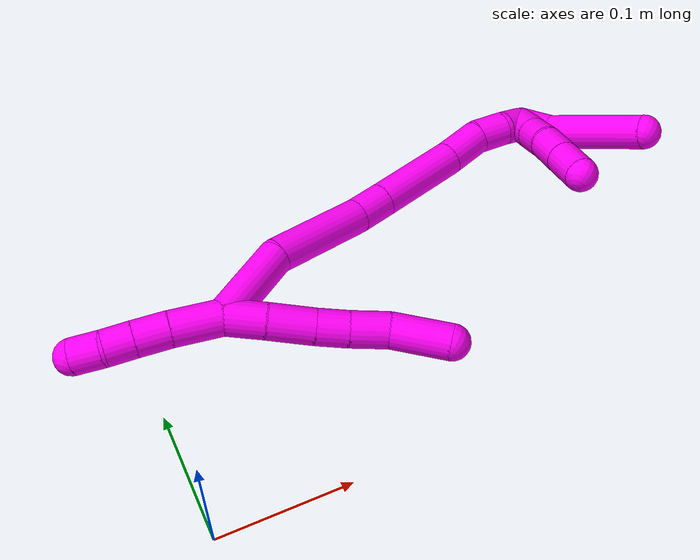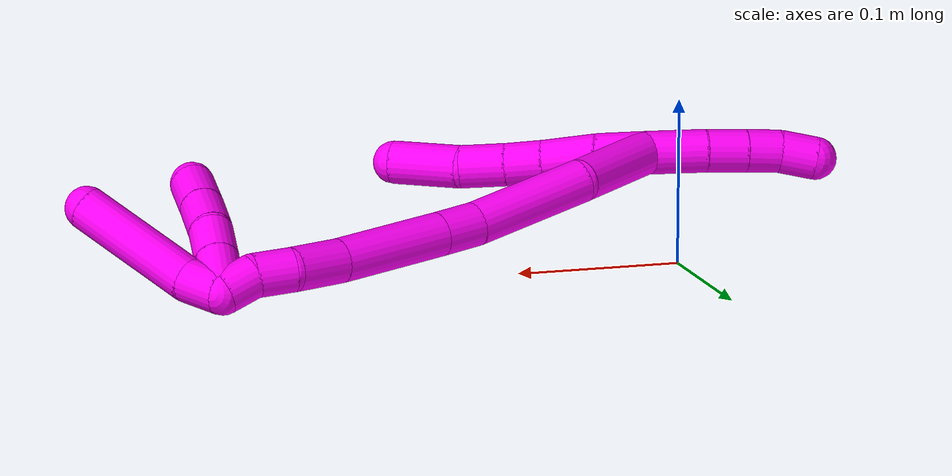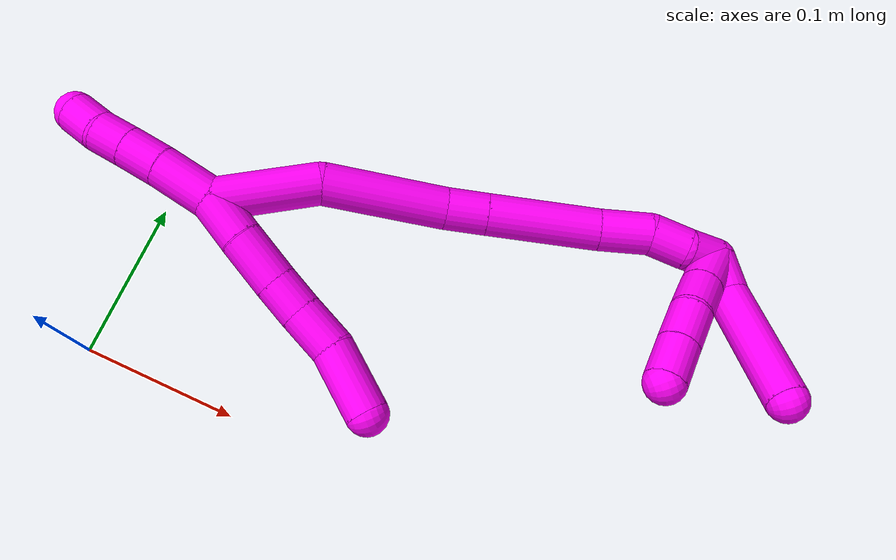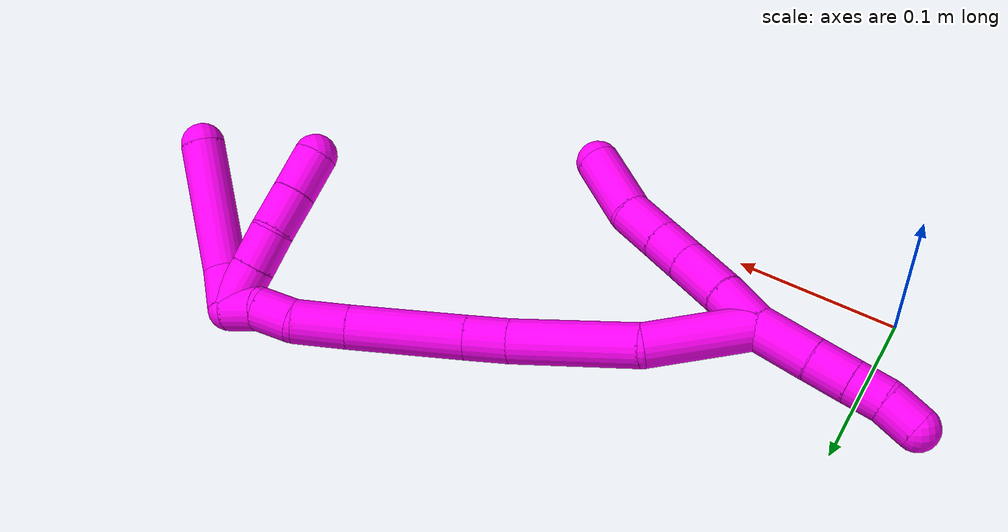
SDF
<sdf version="1.7">
 <world name="default">
  <model name="photoneo_s_sensor">
   <static>1</static>
   <pose>0 0 2 1.57079 1.57079 3.14159</pose>
   <link name="link">
    <inertial><mass>0.1</mass></inertial>
    <sensor name="sensor" type="depth">
     <update_rate>30</update_rate>
     <camera>
      <horizontal_fov>1.22</horizontal_fov>
      <image><width>1920</width><height>1200</height><format>B8G8R8</format></image>
      <clip><near>0.1</near><far>4</far></clip>
      <depth_camera><output>points</output></depth_camera>
     </camera>
     <plugin name="camera_plugin" filename="libgazebo_ros_depth_camera.so">
      <baseline>0.2</baseline>
      <alwaysOn>1</alwaysOn>
      <updateRate>0.0</updateRate>
      <cameraName>camera_ir</cameraName>
      <imageTopicName>/camera/color/image_raw</imageTopicName>
      <cameraInfoTopicName>/camera/color/camera_info</cameraInfoTopicName>
      <depthImageTopicName>/camera/depth/image_raw</depthImageTopicName>
      <depthImageCameraInfoTopicName>/camera/depth/camera_info</depthImageCameraInfoTopicName>
      <pointCloudTopicName>/camera/depth/points</pointCloudTopicName>
      <frameName>fr_optical</frameName>
      <pointCloudCutoff>0.1</pointCloudCutoff>
      <pointCloudCutoffMax>2.0</pointCloudCutoffMax>
      <distortionK1>0</distortionK1>
      <distortionK2>0</distortionK2>
      <distortionK3>0</distortionK3>
      <distortionT1>0</distortionT1>
      <distortionT2>0</distortionT2>
      <CxPrime>0</CxPrime>
      <Cx>0</Cx>
      <Cy>0</Cy>
      <focalLength>0</focalLength>
      <hackBaseline>0</hackBaseline>
     </plugin>
    </sensor>
   </link>
  </model>
  <model name="bin">
   <static>1</static>
   <link name="bottom">
    <collision name="collision-bottom">
     <pose>0 0 -0.01 0 -0 0</pose>
     <geometry><box><size>0.8 0.6 0.02</size></box></geometry>
     <surface>
      <friction><ode><mu>100</mu><mu2>100</mu2></ode></friction>
      <contact><collide_bitmask>65535</collide_bitmask></contact>
     </surface>
    </collision>
   </link>
   <link name="west_wall">
    <collision name="collision-west_wall">
     <pose>-0.41 0 0.1 0 -0 0</pose>
     <geometry><box><size>0.02 0.6 0.2</size></box></geometry>
     <surface>
      <friction><ode><mu>100</mu><mu2>100</mu2></ode></friction>
      <contact><collide_bitmask>65535</collide_bitmask></contact>
     </surface>
    </collision>
   </link>
   <link name="east_wall">
    <collision name="collision-east_wall">
     <pose>0.41 0 0.1 0 -0 0</pose>
     <geometry><box><size>0.02 0.6 0.2</size></box></geometry>
     <surface>
      <friction><ode><mu>100</mu><mu2>100</mu2></ode></friction>
      <contact><collide_bitmask>65535</collide_bitmask></contact>
     </surface>
    </collision>
   </link>
   <link name="south_wall">
    <collision name="collision-south_wall">
     <pose>0 -0.31 0.1 0 -0 0</pose>
     <geometry><box><size>0.8 0.02 0.2</size></box></geometry>
     <surface>
      <friction><ode><mu>100</mu><mu2>100</mu2></ode></friction>
      <contact><collide_bitmask>65535</collide_bitmask></contact>
     </surface>
    </collision>
   </link>
   <link name="north_wall">
    <collision name="collision-north_wall">
     <pose>0 0.31 0.1 0 -0 0</pose>
     <geometry><box><size>0.8 0.02 0.2</size></box></geometry>
     <surface>
      <friction><ode><mu>100</mu><mu2>100</mu2></ode></friction>
      <contact><collide_bitmask>65535</collide_bitmask></contact>
     </surface>
    </collision>
   </link>
  </model>
  <model name="10">
   <static>0</static>
   <link name="10">
    <collision name="collision-cylinder-e_1_2_8">
     <pose>0.013307 0.000683 0.004247 -0.159543 1.25811 -0.11621</pose>
     <geometry><cylinder><radius>0.0125</radius><length>0.02797</length></cylinder></geometry>
     <surface>
      <friction><ode><mu>1.16</mu><mu2>1.16</mu2><slip1>0</slip1><slip2>0</slip2></ode></friction>
      <contact><ode><kp>1e+06</kp><kd>1</kd><max_vel>0</max_vel><min_depth>0.001</min_depth></ode></contact>
     </surface>
    </collision>
    <visual name="visual-cylinder-e_1_2_8">
     <pose>0.013307 0.000683 0.004247 -0.159543 1.25811 -0.11621</pose>
     <geometry><cylinder><radius>0.0125</radius><length>0.02797</length></cylinder></geometry>
     <material><ambient>1 0 0.964706 1</ambient></material>
    </visual>
    <collision name="collision-cylinder-e_2_8_9">
     <pose>0.041607 0.00335 0.013474 -0.379006 1.22748 -0.268627</pose>
     <geometry><cylinder><radius>0.0125</radius><length>0.031843</length></cylinder></geometry>
     <surface>
      <friction><ode><mu>1.16</mu><mu2>1.16</mu2><slip1>0</slip1><slip2>0</slip2></ode></friction>
      <contact><ode><kp>1e+06</kp><kd>1</kd><max_vel>0</max_vel><min_depth>0.001</min_depth></ode></contact>
     </surface>
    </collision>
    <visual name="visual-cylinder-e_2_8_9">
     <pose>0.041607 0.00335 0.013474 -0.379006 1.22748 -0.268627</pose>
     <geometry><cylinder><radius>0.0125</radius><length>0.031843</length></cylinder></geometry>
     <material><ambient>1 0 0.964706 1</ambient></material>
    </visual>
    <collision name="collision-cylinder-e_3_9_10">
     <pose>0.066907 0.006313 0.022236 -0.253564 1.20843 -0.175539</pose>
     <geometry><cylinder><radius>0.0125</radius><length>0.022048</length></cylinder></geometry>
     <surface>
      <friction><ode><mu>1.16</mu><mu2>1.16</mu2><slip1>0</slip1><slip2>0</slip2></ode></friction>
      <contact><ode><kp>1e+06</kp><kd>1</kd><max_vel>0</max_vel><min_depth>0.001</min_depth></ode></contact>
     </surface>
    </collision>
    <visual name="visual-cylinder-e_3_9_10">
     <pose>0.066907 0.006313 0.022236 -0.253564 1.20843 -0.175539</pose>
     <geometry><cylinder><radius>0.0125</radius><length>0.022048</length></cylinder></geometry>
     <material><ambient>1 0 0.964706 1</ambient></material>
    </visual>
    <collision name="collision-cylinder-e_4_10_11">
     <pose>0.08962 0.007962 0.031075 -0.131399 1.18069 -0.088114</pose>
     <geometry><cylinder><radius>0.0125</radius><length>0.026824</length></cylinder></geometry>
     <surface>
      <friction><ode><mu>1.16</mu><mu2>1.16</mu2><slip1>0</slip1><slip2>0</slip2></ode></friction>
      <contact><ode><kp>1e+06</kp><kd>1</kd><max_vel>0</max_vel><min_depth>0.001</min_depth></ode></contact>
     </surface>
    </collision>
    <visual name="visual-cylinder-e_4_10_11">
     <pose>0.08962 0.007962 0.031075 -0.131399 1.18069 -0.088114</pose>
     <geometry><cylinder><radius>0.0125</radius><length>0.026824</length></cylinder></geometry>
     <material><ambient>1 0 0.964706 1</ambient></material>
    </visual>
    <collision name="collision-cylinder-e_5_11_6">
     <pose>0.122393 0.007561 0.039398 0.316338 1.40362 0.268065</pose>
     <geometry><cylinder><radius>0.0125</radius><length>0.041314</length></cylinder></geometry>
     <surface>
      <friction><ode><mu>1.16</mu><mu2>1.16</mu2><slip1>0</slip1><slip2>0</slip2></ode></friction>
      <contact><ode><kp>1e+06</kp><kd>1</kd><max_vel>0</max_vel><min_depth>0.001</min_depth></ode></contact>
     </surface>
    </collision>
    <visual name="visual-cylinder-e_5_11_6">
     <pose>0.122393 0.007561 0.039398 0.316338 1.40362 0.268065</pose>
     <geometry><cylinder><radius>0.0125</radius><length>0.041314</length></cylinder></geometry>
     <material><ambient>1 0 0.964706 1</ambient></material>
    </visual>
    <collision name="collision-cylinder-e_1_2_12">
     <pose>-0.013975 -0.000405 -0.010561 3.10324 -0.9233 -3.06452</pose>
     <geometry><cylinder><radius>0.0125</radius><length>0.035042</length></cylinder></geometry>
     <surface>
      <friction><ode><mu>1.16</mu><mu2>1.16</mu2><slip1>0</slip1><slip2>0</slip2></ode></friction>
      <contact><ode><kp>1e+06</kp><kd>1</kd><max_vel>0</max_vel><min_depth>0.001</min_depth></ode></contact>
     </surface>
    </collision>
    <visual name="visual-cylinder-e_1_2_12">
     <pose>-0.013975 -0.000405 -0.010561 3.10324 -0.9233 -3.06452</pose>
     <geometry><cylinder><radius>0.0125</radius><length>0.035042</length></cylinder></geometry>
     <material><ambient>1 0 0.964706 1</ambient></material>
    </visual>
    <collision name="collision-cylinder-e_2_12_13">
     <pose>-0.037019 -0.000655 -0.028599 -3.12084 -0.88117 3.09759</pose>
     <geometry><cylinder><radius>0.0125</radius><length>0.023512</length></cylinder></geometry>
     <surface>
      <friction><ode><mu>1.16</mu><mu2>1.16</mu2><slip1>0</slip1><slip2>0</slip2></ode></friction>
      <contact><ode><kp>1e+06</kp><kd>1</kd><max_vel>0</max_vel><min_depth>0.001</min_depth></ode></contact>
     </surface>
    </collision>
    <visual name="visual-cylinder-e_2_12_13">
     <pose>-0.037019 -0.000655 -0.028599 -3.12084 -0.88117 3.09759</pose>
     <geometry><cylinder><radius>0.0125</radius><length>0.023512</length></cylinder></geometry>
     <material><ambient>1 0 0.964706 1</ambient></material>
    </visual>
    <collision name="collision-cylinder-e_3_13_14">
     <pose>-0.05374 -0.000242 -0.042626 -3.10219 -0.862576 3.05601</pose>
     <geometry><cylinder><radius>0.0125</radius><length>0.020149</length></cylinder></geometry>
     <surface>
      <friction><ode><mu>1.16</mu><mu2>1.16</mu2><slip1>0</slip1><slip2>0</slip2></ode></friction>
      <contact><ode><kp>1e+06</kp><kd>1</kd><max_vel>0</max_vel><min_depth>0.001</min_depth></ode></contact>
     </surface>
    </collision>
    <visual name="visual-cylinder-e_3_13_14">
     <pose>-0.05374 -0.000242 -0.042626 -3.10219 -0.862576 3.05601</pose>
     <geometry><cylinder><radius>0.0125</radius><length>0.020149</length></cylinder></geometry>
     <material><ambient>1 0 0.964706 1</ambient></material>
    </visual>
    <collision name="collision-cylinder-e_4_14_5">
     <pose>-0.070146 0.002113 -0.054862 -2.78846 -0.965101 2.48504</pose>
     <geometry><cylinder><radius>0.0125</radius><length>0.021298</length></cylinder></geometry>
     <surface>
      <friction><ode><mu>1.16</mu><mu2>1.16</mu2><slip1>0</slip1><slip2>0</slip2></ode></friction>
      <contact><ode><kp>1e+06</kp><kd>1</kd><max_vel>0</max_vel><min_depth>0.001</min_depth></ode></contact>
     </surface>
    </collision>
    <visual name="visual-cylinder-e_4_14_5">
     <pose>-0.070146 0.002113 -0.054862 -2.78846 -0.965101 2.48504</pose>
     <geometry><cylinder><radius>0.0125</radius><length>0.021298</length></cylinder></geometry>
     <material><ambient>1 0 0.964706 1</ambient></material>
    </visual>
    <collision name="collision-cylinder-e_1_2_15">
     <pose>0.005039 0.006662 0.029801 -0.219929 0.16354 -0.018096</pose>
     <geometry><cylinder><radius>0.0125</radius><length>0.061898</length></cylinder></geometry>
     <surface>
      <friction><ode><mu>1.16</mu><mu2>1.16</mu2><slip1>0</slip1><slip2>0</slip2></ode></friction>
      <contact><ode><kp>1e+06</kp><kd>1</kd><max_vel>0</max_vel><min_depth>0.001</min_depth></ode></contact>
     </surface>
    </collision>
    <visual name="visual-cylinder-e_1_2_15">
     <pose>0.005039 0.006662 0.029801 -0.219929 0.16354 -0.018096</pose>
     <geometry><cylinder><radius>0.0125</radius><length>0.061898</length></cylinder></geometry>
     <material><ambient>1 0 0.964706 1</ambient></material>
    </visual>
    <collision name="collision-cylinder-e_2_15_16">
     <pose>0.027245 0.024336 0.090161 -0.345886 0.48619 -0.086591</pose>
     <geometry><cylinder><radius>0.0125</radius><length>0.073482</length></cylinder></geometry>
     <surface>
      <friction><ode><mu>1.16</mu><mu2>1.16</mu2><slip1>0</slip1><slip2>0</slip2></ode></friction>
      <contact><ode><kp>1e+06</kp><kd>1</kd><max_vel>0</max_vel><min_depth>0.001</min_depth></ode></contact>
     </surface>
    </collision>
    <visual name="visual-cylinder-e_2_15_16">
     <pose>0.027245 0.024336 0.090161 -0.345886 0.48619 -0.086591</pose>
     <geometry><cylinder><radius>0.0125</radius><length>0.073482</length></cylinder></geometry>
     <material><ambient>1 0 0.964706 1</ambient></material>
    </visual>
    <collision name="collision-cylinder-e_3_16_17">
     <pose>0.04992 0.037749 0.131459 -0.219845 0.46402 -0.05214</pose>
     <geometry><cylinder><radius>0.0125</radius><length>0.024607</length></cylinder></geometry>
     <surface>
      <friction><ode><mu>1.16</mu><mu2>1.16</mu2><slip1>0</slip1><slip2>0</slip2></ode></friction>
      <contact><ode><kp>1e+06</kp><kd>1</kd><max_vel>0</max_vel><min_depth>0.001</min_depth></ode></contact>
     </surface>
    </collision>
    <visual name="visual-cylinder-e_3_16_17">
     <pose>0.04992 0.037749 0.131459 -0.219845 0.46402 -0.05214</pose>
     <geometry><cylinder><radius>0.0125</radius><length>0.024607</length></cylinder></geometry>
     <material><ambient>1 0 0.964706 1</ambient></material>
    </visual>
    <collision name="collision-cylinder-e_4_17_18">
     <pose>0.070264 0.046168 0.17134 -0.20368 0.462539 -0.04812</pose>
     <geometry><cylinder><radius>0.0125</radius><length>0.066506</length></cylinder></geometry>
     <surface>
      <friction><ode><mu>1.16</mu><mu2>1.16</mu2><slip1>0</slip1><slip2>0</slip2></ode></friction>
      <contact><ode><kp>1e+06</kp><kd>1</kd><max_vel>0</max_vel><min_depth>0.001</min_depth></ode></contact>
     </surface>
    </collision>
    <visual name="visual-cylinder-e_4_17_18">
     <pose>0.070264 0.046168 0.17134 -0.20368 0.462539 -0.04812</pose>
     <geometry><cylinder><radius>0.0125</radius><length>0.066506</length></cylinder></geometry>
     <material><ambient>1 0 0.964706 1</ambient></material>
    </visual>
    <collision name="collision-cylinder-e_5_18_19">
     <pose>0.091526 0.053935 0.214507 -0.124003 0.426626 -0.026893</pose>
     <geometry><cylinder><radius>0.0125</radius><length>0.031047</length></cylinder></geometry>
     <surface>
      <friction><ode><mu>1.16</mu><mu2>1.16</mu2><slip1>0</slip1><slip2>0</slip2></ode></friction>
      <contact><ode><kp>1e+06</kp><kd>1</kd><max_vel>0</max_vel><min_depth>0.001</min_depth></ode></contact>
     </surface>
    </collision>
    <visual name="visual-cylinder-e_5_18_19">
     <pose>0.091526 0.053935 0.214507 -0.124003 0.426626 -0.026893</pose>
     <geometry><cylinder><radius>0.0125</radius><length>0.031047</length></cylinder></geometry>
     <material><ambient>1 0 0.964706 1</ambient></material>
    </visual>
    <collision name="collision-cylinder-e_6_19_20">
     <pose>0.105514 0.05707 0.236696 -0.168218 0.740105 -0.065387</pose>
     <geometry><cylinder><radius>0.0125</radius><length>0.022433</length></cylinder></geometry>
     <surface>
      <friction><ode><mu>1.16</mu><mu2>1.16</mu2><slip1>0</slip1><slip2>0</slip2></ode></friction>
      <contact><ode><kp>1e+06</kp><kd>1</kd><max_vel>0</max_vel><min_depth>0.001</min_depth></ode></contact>
     </surface>
    </collision>
    <visual name="visual-cylinder-e_6_19_20">
     <pose>0.105514 0.05707 0.236696 -0.168218 0.740105 -0.065387</pose>
     <geometry><cylinder><radius>0.0125</radius><length>0.022433</length></cylinder></geometry>
     <material><ambient>1 0 0.964706 1</ambient></material>
    </visual>
    <collision name="collision-cylinder-e_7_20_1">
     <pose>0.118344 0.062749 0.252217 -0.528287 0.553791 -0.153427</pose>
     <geometry><cylinder><radius>0.0125</radius><length>0.020026</length></cylinder></geometry>
     <surface>
      <friction><ode><mu>1.16</mu><mu2>1.16</mu2><slip1>0</slip1><slip2>0</slip2></ode></friction>
      <contact><ode><kp>1e+06</kp><kd>1</kd><max_vel>0</max_vel><min_depth>0.001</min_depth></ode></contact>
     </surface>
    </collision>
    <visual name="visual-cylinder-e_7_20_1">
     <pose>0.118344 0.062749 0.252217 -0.528287 0.553791 -0.153427</pose>
     <geometry><cylinder><radius>0.0125</radius><length>0.020026</length></cylinder></geometry>
     <material><ambient>1 0 0.964706 1</ambient></material>
    </visual>
    <collision name="collision-cylinder-e_1_1_21">
     <pose>0.135416 0.064054 0.25864 1.87328 1.31165 1.61589</pose>
     <geometry><cylinder><radius>0.0125</radius><length>0.024428</length></cylinder></geometry>
     <surface>
      <friction><ode><mu>1.16</mu><mu2>1.16</mu2><slip1>0</slip1><slip2>0</slip2></ode></friction>
      <contact><ode><kp>1e+06</kp><kd>1</kd><max_vel>0</max_vel><min_depth>0.001</min_depth></ode></contact>
     </surface>
    </collision>
    <visual name="visual-cylinder-e_1_1_21">
     <pose>0.135416 0.064054 0.25864 1.87328 1.31165 1.61589</pose>
     <geometry><cylinder><radius>0.0125</radius><length>0.024428</length></cylinder></geometry>
     <material><ambient>1 0 0.964706 1</ambient></material>
    </visual>
    <collision name="collision-cylinder-e_2_21_4">
     <pose>0.179964 0.042211 0.258183 1.54559 1.04817 1.02646</pose>
     <geometry><cylinder><radius>0.0125</radius><length>0.075572</length></cylinder></geometry>
     <surface>
      <friction><ode><mu>1.16</mu><mu2>1.16</mu2><slip1>0</slip1><slip2>0</slip2></ode></friction>
      <contact><ode><kp>1e+06</kp><kd>1</kd><max_vel>0</max_vel><min_depth>0.001</min_depth></ode></contact>
     </surface>
    </collision>
    <visual name="visual-cylinder-e_2_21_4">
     <pose>0.179964 0.042211 0.258183 1.54559 1.04817 1.02646</pose>
     <geometry><cylinder><radius>0.0125</radius><length>0.075572</length></cylinder></geometry>
     <material><ambient>1 0 0.964706 1</ambient></material>
    </visual>
    <collision name="collision-cylinder-e_1_1_22">
     <pose>0.130493 0.05865 0.251716 2.32326 0.539529 1.13527</pose>
     <geometry><cylinder><radius>0.0125</radius><length>0.026797</length></cylinder></geometry>
     <surface>
      <friction><ode><mu>1.16</mu><mu2>1.16</mu2><slip1>0</slip1><slip2>0</slip2></ode></friction>
      <contact><ode><kp>1e+06</kp><kd>1</kd><max_vel>0</max_vel><min_depth>0.001</min_depth></ode></contact>
     </surface>
    </collision>
    <visual name="visual-cylinder-e_1_1_22">
     <pose>0.130493 0.05865 0.251716 2.32326 0.539529 1.13527</pose>
     <geometry><cylinder><radius>0.0125</radius><length>0.026797</length></cylinder></geometry>
     <material><ambient>1 0 0.964706 1</ambient></material>
    </visual>
    <collision name="collision-cylinder-e_2_22_23">
     <pose>0.143478 0.043062 0.237303 2.30972 0.5598 1.15383</pose>
     <geometry><cylinder><radius>0.0125</radius><length>0.02298</length></cylinder></geometry>
     <surface>
      <friction><ode><mu>1.16</mu><mu2>1.16</mu2><slip1>0</slip1><slip2>0</slip2></ode></friction>
      <contact><ode><kp>1e+06</kp><kd>1</kd><max_vel>0</max_vel><min_depth>0.001</min_depth></ode></contact>
     </surface>
    </collision>
    <visual name="visual-cylinder-e_2_22_23">
     <pose>0.143478 0.043062 0.237303 2.30972 0.5598 1.15383</pose>
     <geometry><cylinder><radius>0.0125</radius><length>0.02298</length></cylinder></geometry>
     <material><ambient>1 0 0.964706 1</ambient></material>
    </visual>
    <collision name="collision-cylinder-e_3_23_24">
     <pose>0.157292 0.029907 0.223127 2.47792 0.67319 1.58615</pose>
     <geometry><cylinder><radius>0.0125</radius><length>0.02474</length></cylinder></geometry>
     <surface>
      <friction><ode><mu>1.16</mu><mu2>1.16</mu2><slip1>0</slip1><slip2>0</slip2></ode></friction>
      <contact><ode><kp>1e+06</kp><kd>1</kd><max_vel>0</max_vel><min_depth>0.001</min_depth></ode></contact>
     </surface>
    </collision>
    <visual name="visual-cylinder-e_3_23_24">
     <pose>0.157292 0.029907 0.223127 2.47792 0.67319 1.58615</pose>
     <geometry><cylinder><radius>0.0125</radius><length>0.02474</length></cylinder></geometry>
     <material><ambient>1 0 0.964706 1</ambient></material>
    </visual>
    <collision name="collision-cylinder-e_4_24_3">
     <pose>0.173177 0.018067 0.207702 2.49582 0.696413 1.65218</pose>
     <geometry><cylinder><radius>0.0125</radius><length>0.025483</length></cylinder></geometry>
     <surface>
      <friction><ode><mu>1.16</mu><mu2>1.16</mu2><slip1>0</slip1><slip2>0</slip2></ode></friction>
      <contact><ode><kp>1e+06</kp><kd>1</kd><max_vel>0</max_vel><min_depth>0.001</min_depth></ode></contact>
     </surface>
    </collision>
    <visual name="visual-cylinder-e_4_24_3">
     <pose>0.173177 0.018067 0.207702 2.49582 0.696413 1.65218</pose>
     <geometry><cylinder><radius>0.0125</radius><length>0.025483</length></cylinder></geometry>
     <material><ambient>1 0 0.964706 1</ambient></material>
    </visual>
    <collision name="collision-sphere-3">
     <pose>0.181351 0.012185 0.199896 0 -0 0</pose>
     <geometry><sphere><radius>0.0125</radius></sphere></geometry>
     <surface>
      <friction><ode><mu>1.16</mu><mu2>1.16</mu2><slip1>0</slip1><slip2>0</slip2></ode></friction>
      <contact><ode><kp>1e+06</kp><kd>1</kd><max_vel>0</max_vel><min_depth>0.001</min_depth></ode></contact>
     </surface>
    </collision>
    <visual name="visual-sphere-3">
     <pose>0.181351 0.012185 0.199896 0 -0 0</pose>
     <geometry><sphere><radius>0.0125</radius></sphere></geometry>
     <material><ambient>1 0 0.964706 1</ambient></material>
    </visual>
    <collision name="collision-sphere-24">
     <pose>0.165004 0.02395 0.215509 0 -0 0</pose>
     <geometry><sphere><radius>0.0125</radius></sphere></geometry>
     <surface>
      <friction><ode><mu>1.16</mu><mu2>1.16</mu2><slip1>0</slip1><slip2>0</slip2></ode></friction>
      <contact><ode><kp>1e+06</kp><kd>1</kd><max_vel>0</max_vel><min_depth>0.001</min_depth></ode></contact>
     </surface>
    </collision>
    <visual name="visual-sphere-24">
     <pose>0.165004 0.02395 0.215509 0 -0 0</pose>
     <geometry><sphere><radius>0.0125</radius></sphere></geometry>
     <material><ambient>1 0 0.964706 1</ambient></material>
    </visual>
    <collision name="collision-sphere-23">
     <pose>0.149579 0.035865 0.230745 0 -0 0</pose>
     <geometry><sphere><radius>0.0125</radius></sphere></geometry>
     <surface>
      <friction><ode><mu>1.16</mu><mu2>1.16</mu2><slip1>0</slip1><slip2>0</slip2></ode></friction>
      <contact><ode><kp>1e+06</kp><kd>1</kd><max_vel>0</max_vel><min_depth>0.001</min_depth></ode></contact>
     </surface>
    </collision>
    <visual name="visual-sphere-23">
     <pose>0.149579 0.035865 0.230745 0 -0 0</pose>
     <geometry><sphere><radius>0.0125</radius></sphere></geometry>
     <material><ambient>1 0 0.964706 1</ambient></material>
    </visual>
    <collision name="collision-sphere-22">
     <pose>0.137376 0.050259 0.24386 0 -0 0</pose>
     <geometry><sphere><radius>0.0125</radius></sphere></geometry>
     <surface>
      <friction><ode><mu>1.16</mu><mu2>1.16</mu2><slip1>0</slip1><slip2>0</slip2></ode></friction>
      <contact><ode><kp>1e+06</kp><kd>1</kd><max_vel>0</max_vel><min_depth>0.001</min_depth></ode></contact>
     </surface>
    </collision>
    <visual name="visual-sphere-22">
     <pose>0.137376 0.050259 0.24386 0 -0 0</pose>
     <geometry><sphere><radius>0.0125</radius></sphere></geometry>
     <material><ambient>1 0 0.964706 1</ambient></material>
    </visual>
    <collision name="collision-sphere-4">
     <pose>0.212706 0.023356 0.258659 0 -0 0</pose>
     <geometry><sphere><radius>0.0125</radius></sphere></geometry>
     <surface>
      <friction><ode><mu>1.16</mu><mu2>1.16</mu2><slip1>0</slip1><slip2>0</slip2></ode></friction>
      <contact><ode><kp>1e+06</kp><kd>1</kd><max_vel>0</max_vel><min_depth>0.001</min_depth></ode></contact>
     </surface>
    </collision>
    <visual name="visual-sphere-4">
     <pose>0.212706 0.023356 0.258659 0 -0 0</pose>
     <geometry><sphere><radius>0.0125</radius></sphere></geometry>
     <material><ambient>1 0 0.964706 1</ambient></material>
    </visual>
    <collision name="collision-sphere-21">
     <pose>0.147222 0.061066 0.257708 0 -0 0</pose>
     <geometry><sphere><radius>0.0125</radius></sphere></geometry>
     <surface>
      <friction><ode><mu>1.16</mu><mu2>1.16</mu2><slip1>0</slip1><slip2>0</slip2></ode></friction>
      <contact><ode><kp>1e+06</kp><kd>1</kd><max_vel>0</max_vel><min_depth>0.001</min_depth></ode></contact>
     </surface>
    </collision>
    <visual name="visual-sphere-21">
     <pose>0.147222 0.061066 0.257708 0 -0 0</pose>
     <geometry><sphere><radius>0.0125</radius></sphere></geometry>
     <material><ambient>1 0 0.964706 1</ambient></material>
    </visual>
    <collision name="collision-sphere-1">
     <pose>0.12361 0.067042 0.259573 0 -0 0</pose>
     <geometry><sphere><radius>0.0125</radius></sphere></geometry>
     <surface>
      <friction><ode><mu>1.16</mu><mu2>1.16</mu2><slip1>0</slip1><slip2>0</slip2></ode></friction>
      <contact><ode><kp>1e+06</kp><kd>1</kd><max_vel>0</max_vel><min_depth>0.001</min_depth></ode></contact>
     </surface>
    </collision>
    <visual name="visual-sphere-1">
     <pose>0.12361 0.067042 0.259573 0 -0 0</pose>
     <geometry><sphere><radius>0.0125</radius></sphere></geometry>
     <material><ambient>1 0 0.964706 1</ambient></material>
    </visual>
    <collision name="collision-sphere-6">
     <pose>0.142762 0.006491 0.042665 0 -0 0</pose>
     <geometry><sphere><radius>0.0125</radius></sphere></geometry>
     <surface>
      <friction><ode><mu>1.16</mu><mu2>1.16</mu2><slip1>0</slip1><slip2>0</slip2></ode></friction>
      <contact><ode><kp>1e+06</kp><kd>1</kd><max_vel>0</max_vel><min_depth>0.001</min_depth></ode></contact>
     </surface>
    </collision>
    <visual name="visual-sphere-6">
     <pose>0.142762 0.006491 0.042665 0 -0 0</pose>
     <geometry><sphere><radius>0.0125</radius></sphere></geometry>
     <material><ambient>1 0 0.964706 1</ambient></material>
    </visual>
    <collision name="collision-sphere-11">
     <pose>0.102024 0.00863 0.036132 0 -0 0</pose>
     <geometry><sphere><radius>0.0125</radius></sphere></geometry>
     <surface>
      <friction><ode><mu>1.16</mu><mu2>1.16</mu2><slip1>0</slip1><slip2>0</slip2></ode></friction>
      <contact><ode><kp>1e+06</kp><kd>1</kd><max_vel>0</max_vel><min_depth>0.001</min_depth></ode></contact>
     </surface>
    </collision>
    <visual name="visual-sphere-11">
     <pose>0.102024 0.00863 0.036132 0 -0 0</pose>
     <geometry><sphere><radius>0.0125</radius></sphere></geometry>
     <material><ambient>1 0 0.964706 1</ambient></material>
    </visual>
    <collision name="collision-sphere-10">
     <pose>0.077215 0.007293 0.026019 0 -0 0</pose>
     <geometry><sphere><radius>0.0125</radius></sphere></geometry>
     <surface>
      <friction><ode><mu>1.16</mu><mu2>1.16</mu2><slip1>0</slip1><slip2>0</slip2></ode></friction>
      <contact><ode><kp>1e+06</kp><kd>1</kd><max_vel>0</max_vel><min_depth>0.001</min_depth></ode></contact>
     </surface>
    </collision>
    <visual name="visual-sphere-10">
     <pose>0.077215 0.007293 0.026019 0 -0 0</pose>
     <geometry><sphere><radius>0.0125</radius></sphere></geometry>
     <material><ambient>1 0 0.964706 1</ambient></material>
    </visual>
    <collision name="collision-sphere-9">
     <pose>0.056599 0.005333 0.018453 0 -0 0</pose>
     <geometry><sphere><radius>0.0125</radius></sphere></geometry>
     <surface>
      <friction><ode><mu>1.16</mu><mu2>1.16</mu2><slip1>0</slip1><slip2>0</slip2></ode></friction>
      <contact><ode><kp>1e+06</kp><kd>1</kd><max_vel>0</max_vel><min_depth>0.001</min_depth></ode></contact>
     </surface>
    </collision>
    <visual name="visual-sphere-9">
     <pose>0.056599 0.005333 0.018453 0 -0 0</pose>
     <geometry><sphere><radius>0.0125</radius></sphere></geometry>
     <material><ambient>1 0 0.964706 1</ambient></material>
    </visual>
    <collision name="collision-sphere-2">
     <geometry><sphere><radius>0.0125</radius></sphere></geometry>
     <surface>
      <friction><ode><mu>1.16</mu><mu2>1.16</mu2><slip1>0</slip1><slip2>0</slip2></ode></friction>
      <contact><ode><kp>1e+06</kp><kd>1</kd><max_vel>0</max_vel><min_depth>0.001</min_depth></ode></contact>
     </surface>
    </collision>
    <visual name="visual-sphere-2">
     <geometry><sphere><radius>0.0125</radius></sphere></geometry>
     <material><ambient>1 0 0.964706 1</ambient></material>
    </visual>
    <collision name="collision-sphere-19">
     <pose>0.09795 0.055683 0.228531 0 -0 0</pose>
     <geometry><sphere><radius>0.0125</radius></sphere></geometry>
     <surface>
      <friction><ode><mu>1.16</mu><mu2>1.16</mu2><slip1>0</slip1><slip2>0</slip2></ode></friction>
      <contact><ode><kp>1e+06</kp><kd>1</kd><max_vel>0</max_vel><min_depth>0.001</min_depth></ode></contact>
     </surface>
    </collision>
    <visual name="visual-sphere-19">
     <pose>0.09795 0.055683 0.228531 0 -0 0</pose>
     <geometry><sphere><radius>0.0125</radius></sphere></geometry>
     <material><ambient>1 0 0.964706 1</ambient></material>
    </visual>
    <collision name="collision-sphere-8">
     <pose>0.026614 0.001367 0.008495 0 -0 0</pose>
     <geometry><sphere><radius>0.0125</radius></sphere></geometry>
     <surface>
      <friction><ode><mu>1.16</mu><mu2>1.16</mu2><slip1>0</slip1><slip2>0</slip2></ode></friction>
      <contact><ode><kp>1e+06</kp><kd>1</kd><max_vel>0</max_vel><min_depth>0.001</min_depth></ode></contact>
     </surface>
    </collision>
    <visual name="visual-sphere-8">
     <pose>0.026614 0.001367 0.008495 0 -0 0</pose>
     <geometry><sphere><radius>0.0125</radius></sphere></geometry>
     <material><ambient>1 0 0.964706 1</ambient></material>
    </visual>
    <collision name="collision-sphere-12">
     <pose>-0.027949 -0.000811 -0.021121 0 -0 0</pose>
     <geometry><sphere><radius>0.0125</radius></sphere></geometry>
     <surface>
      <friction><ode><mu>1.16</mu><mu2>1.16</mu2><slip1>0</slip1><slip2>0</slip2></ode></friction>
      <contact><ode><kp>1e+06</kp><kd>1</kd><max_vel>0</max_vel><min_depth>0.001</min_depth></ode></contact>
     </surface>
    </collision>
    <visual name="visual-sphere-12">
     <pose>-0.027949 -0.000811 -0.021121 0 -0 0</pose>
     <geometry><sphere><radius>0.0125</radius></sphere></geometry>
     <material><ambient>1 0 0.964706 1</ambient></material>
    </visual>
    <collision name="collision-sphere-13">
     <pose>-0.046088 -0.0005 -0.036077 0 -0 0</pose>
     <geometry><sphere><radius>0.0125</radius></sphere></geometry>
     <surface>
      <friction><ode><mu>1.16</mu><mu2>1.16</mu2><slip1>0</slip1><slip2>0</slip2></ode></friction>
      <contact><ode><kp>1e+06</kp><kd>1</kd><max_vel>0</max_vel><min_depth>0.001</min_depth></ode></contact>
     </surface>
    </collision>
    <visual name="visual-sphere-13">
     <pose>-0.046088 -0.0005 -0.036077 0 -0 0</pose>
     <geometry><sphere><radius>0.0125</radius></sphere></geometry>
     <material><ambient>1 0 0.964706 1</ambient></material>
    </visual>
    <collision name="collision-sphere-14">
     <pose>-0.061391 1.6e-05 -0.049174 0 -0 0</pose>
     <geometry><sphere><radius>0.0125</radius></sphere></geometry>
     <surface>
      <friction><ode><mu>1.16</mu><mu2>1.16</mu2><slip1>0</slip1><slip2>0</slip2></ode></friction>
      <contact><ode><kp>1e+06</kp><kd>1</kd><max_vel>0</max_vel><min_depth>0.001</min_depth></ode></contact>
     </surface>
    </collision>
    <visual name="visual-sphere-14">
     <pose>-0.061391 1.6e-05 -0.049174 0 -0 0</pose>
     <geometry><sphere><radius>0.0125</radius></sphere></geometry>
     <material><ambient>1 0 0.964706 1</ambient></material>
    </visual>
    <collision name="collision-sphere-5">
     <pose>-0.078901 0.00421 -0.060551 0 -0 0</pose>
     <geometry><sphere><radius>0.0125</radius></sphere></geometry>
     <surface>
      <friction><ode><mu>1.16</mu><mu2>1.16</mu2><slip1>0</slip1><slip2>0</slip2></ode></friction>
      <contact><ode><kp>1e+06</kp><kd>1</kd><max_vel>0</max_vel><min_depth>0.001</min_depth></ode></contact>
     </surface>
    </collision>
    <visual name="visual-sphere-5">
     <pose>-0.078901 0.00421 -0.060551 0 -0 0</pose>
     <geometry><sphere><radius>0.0125</radius></sphere></geometry>
     <material><ambient>1 0 0.964706 1</ambient></material>
    </visual>
    <collision name="collision-sphere-15">
     <pose>0.010078 0.013324 0.059601 0 -0 0</pose>
     <geometry><sphere><radius>0.0125</radius></sphere></geometry>
     <surface>
      <friction><ode><mu>1.16</mu><mu2>1.16</mu2><slip1>0</slip1><slip2>0</slip2></ode></friction>
      <contact><ode><kp>1e+06</kp><kd>1</kd><max_vel>0</max_vel><min_depth>0.001</min_depth></ode></contact>
     </surface>
    </collision>
    <visual name="visual-sphere-15">
     <pose>0.010078 0.013324 0.059601 0 -0 0</pose>
     <geometry><sphere><radius>0.0125</radius></sphere></geometry>
     <material><ambient>1 0 0.964706 1</ambient></material>
    </visual>
    <collision name="collision-sphere-16">
     <pose>0.044413 0.035349 0.120721 0 -0 0</pose>
     <geometry><sphere><radius>0.0125</radius></sphere></geometry>
     <surface>
      <friction><ode><mu>1.16</mu><mu2>1.16</mu2><slip1>0</slip1><slip2>0</slip2></ode></friction>
      <contact><ode><kp>1e+06</kp><kd>1</kd><max_vel>0</max_vel><min_depth>0.001</min_depth></ode></contact>
     </surface>
    </collision>
    <visual name="visual-sphere-16">
     <pose>0.044413 0.035349 0.120721 0 -0 0</pose>
     <geometry><sphere><radius>0.0125</radius></sphere></geometry>
     <material><ambient>1 0 0.964706 1</ambient></material>
    </visual>
    <collision name="collision-sphere-17">
     <pose>0.055426 0.040148 0.142196 0 -0 0</pose>
     <geometry><sphere><radius>0.0125</radius></sphere></geometry>
     <surface>
      <friction><ode><mu>1.16</mu><mu2>1.16</mu2><slip1>0</slip1><slip2>0</slip2></ode></friction>
      <contact><ode><kp>1e+06</kp><kd>1</kd><max_vel>0</max_vel><min_depth>0.001</min_depth></ode></contact>
     </surface>
    </collision>
    <visual name="visual-sphere-17">
     <pose>0.055426 0.040148 0.142196 0 -0 0</pose>
     <geometry><sphere><radius>0.0125</radius></sphere></geometry>
     <material><ambient>1 0 0.964706 1</ambient></material>
    </visual>
    <collision name="collision-sphere-18">
     <pose>0.085102 0.052187 0.200484 0 -0 0</pose>
     <geometry><sphere><radius>0.0125</radius></sphere></geometry>
     <surface>
      <friction><ode><mu>1.16</mu><mu2>1.16</mu2><slip1>0</slip1><slip2>0</slip2></ode></friction>
      <contact><ode><kp>1e+06</kp><kd>1</kd><max_vel>0</max_vel><min_depth>0.001</min_depth></ode></contact>
     </surface>
    </collision>
    <visual name="visual-sphere-18">
     <pose>0.085102 0.052187 0.200484 0 -0 0</pose>
     <geometry><sphere><radius>0.0125</radius></sphere></geometry>
     <material><ambient>1 0 0.964706 1</ambient></material>
    </visual>
    <collision name="collision-sphere-20">
     <pose>0.113078 0.058456 0.244862 0 -0 0</pose>
     <geometry><sphere><radius>0.0125</radius></sphere></geometry>
     <surface>
      <friction><ode><mu>1.16</mu><mu2>1.16</mu2><slip1>0</slip1><slip2>0</slip2></ode></friction>
      <contact><ode><kp>1e+06</kp><kd>1</kd><max_vel>0</max_vel><min_depth>0.001</min_depth></ode></contact>
     </surface>
    </collision>
    <visual name="visual-sphere-20">
     <pose>0.113078 0.058456 0.244862 0 -0 0</pose>
     <geometry><sphere><radius>0.0125</radius></sphere></geometry>
     <material><ambient>1 0 0.964706 1</ambient></material>
    </visual>
    <inertial>
     <pose>0.072662 0.026305 0.119188 0 -0 0</pose>
     <mass>0.75</mass>
     <inertia>
      <ixx>0.000142</ixx>
      <ixy>0</ixy>
      <ixz>0</ixz>
      <iyy>0.000172</iyy>
      <iyz>0</iyz>
      <izz>-7.2e-05</izz>
     </inertia>
    </inertial>
   </link>
   <pose>0.053987 0.100834 0.091596 -1.43339 0.083469 -0.795134</pose>
  </model>
 </world>
</sdf>
